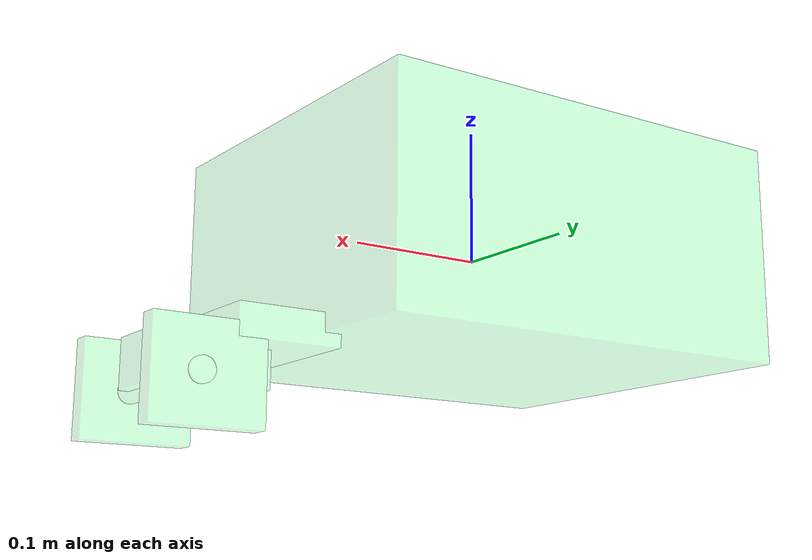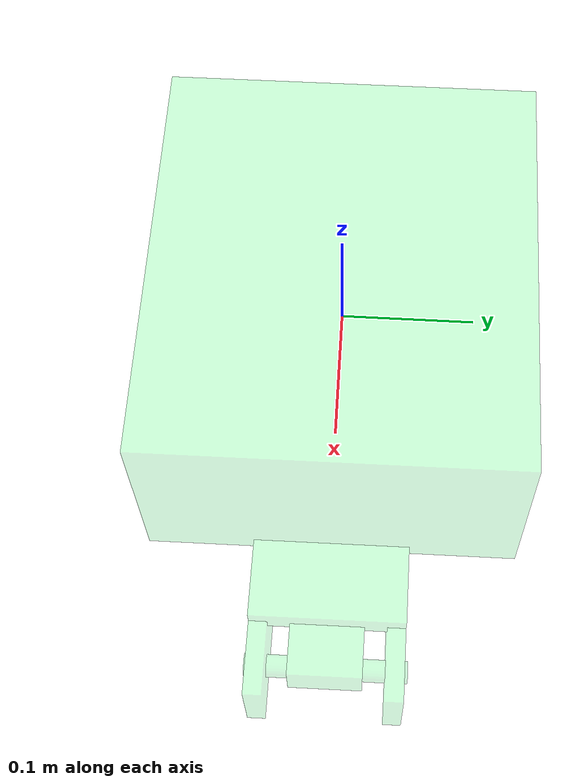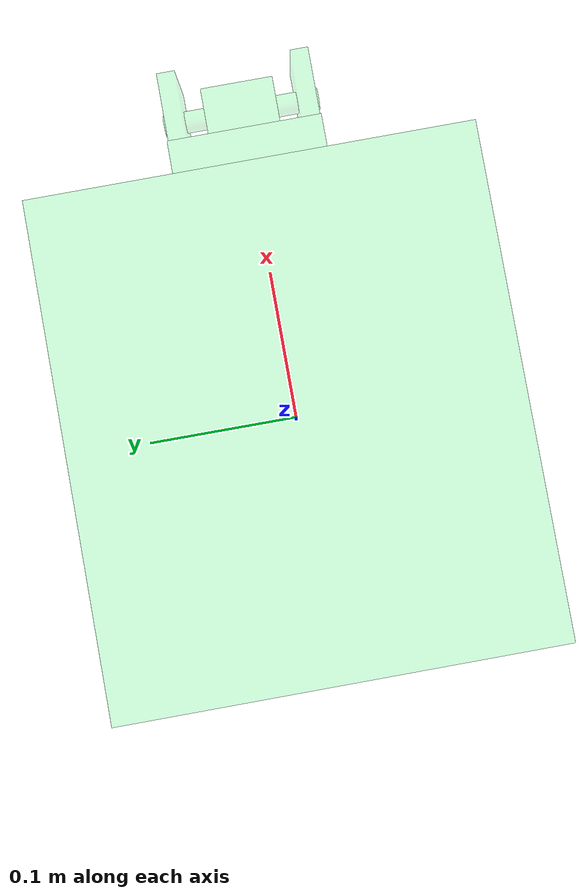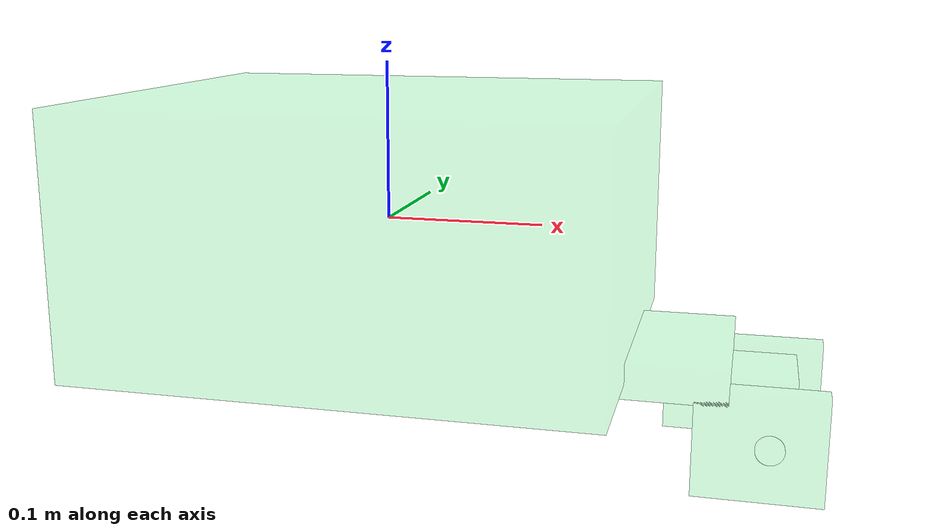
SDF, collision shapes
<?xml version="1.0"?>
<sdf version="1.9">
  <model name="gamantaray_rov_hydro">
    <static>false</static>
    <self_collide>false</self_collide>
    <allow_auto_disable>false</allow_auto_disable>

    <link name="base_link">
      <pose>0 0 0 0 0 0</pose>
      <inertial>
        <mass>13.95</mass>
        <pose>0 0 -0.045 0 0 0</pose>
        <inertia>
          <ixx>0.26</ixx>
          <ixy>0</ixy>
          <ixz>0</ixz>
          <iyy>0.32</iyy>
          <iyz>0</iyz>
          <izz>0.42</izz>
        </inertia>
      </inertial>

      <collision name="buoyancy_body_collision">
        <pose>0 0 0 0 0 0</pose>
        <geometry>
          <box>
            <size>0.32 0.28 0.16</size>
          </box>
        </geometry>
      </collision>
      <collision name="gripper_saddle_collision">
        <pose>0.184 0 -0.078 0 0 0</pose>
        <geometry><box><size>0.072 0.118 0.022</size></box></geometry>
      </collision>
      <collision name="gripper_neck_collision">
        <pose>0.220 0 -0.098 0 0 0</pose>
        <geometry><box><size>0.078 0.056 0.034</size></box></geometry>
      </collision>
      <collision name="gripper_left_cheek_collision">
        <pose>0.238 0.052 -0.112 0 0 0</pose>
        <geometry><box><size>0.076 0.014 0.066</size></box></geometry>
      </collision>
      <collision name="gripper_right_cheek_collision">
        <pose>0.238 -0.052 -0.112 0 0 0</pose>
        <geometry><box><size>0.076 0.014 0.066</size></box></geometry>
      </collision>
      <collision name="gripper_cross_pin_collision">
        <pose>0.244 0 -0.112 1.5707963268 0 0</pose>
        <geometry><cylinder><radius>0.0085</radius><length>0.124</length></cylinder></geometry>
      </collision>

      <visual name="body_collision_debug_visual">
        <pose>0 0 0 0 0 0</pose>
        <geometry><box><size>0.32 0.28 0.16</size></box></geometry>
        <material><ambient>0.00 1.00 0.25 0.12</ambient><diffuse>0.00 1.00 0.25 0.12</diffuse><specular>0.30 1.00 0.50 0.25</specular></material>
        <transparency>0.88</transparency>
      </visual>
      <visual name="gripper_saddle_collision_debug_visual">
        <pose>0.184 0 -0.078 0 0 0</pose>
        <geometry><box><size>0.072 0.118 0.022</size></box></geometry>
        <material><ambient>0.00 1.00 0.25 0.28</ambient><diffuse>0.00 1.00 0.25 0.28</diffuse><specular>0.30 1.00 0.50 0.35</specular></material>
        <transparency>0.72</transparency>
      </visual>
      <visual name="gripper_neck_collision_debug_visual">
        <pose>0.220 0 -0.098 0 0 0</pose>
        <geometry><box><size>0.078 0.056 0.034</size></box></geometry>
        <material><ambient>0.00 1.00 0.25 0.28</ambient><diffuse>0.00 1.00 0.25 0.28</diffuse><specular>0.30 1.00 0.50 0.35</specular></material>
        <transparency>0.72</transparency>
      </visual>
      <visual name="gripper_left_cheek_collision_debug_visual">
        <pose>0.238 0.052 -0.112 0 0 0</pose>
        <geometry><box><size>0.076 0.014 0.066</size></box></geometry>
        <material><ambient>0.00 1.00 0.25 0.34</ambient><diffuse>0.00 1.00 0.25 0.34</diffuse><specular>0.30 1.00 0.50 0.40</specular></material>
        <transparency>0.66</transparency>
      </visual>
      <visual name="gripper_right_cheek_collision_debug_visual">
        <pose>0.238 -0.052 -0.112 0 0 0</pose>
        <geometry><box><size>0.076 0.014 0.066</size></box></geometry>
        <material><ambient>0.00 1.00 0.25 0.34</ambient><diffuse>0.00 1.00 0.25 0.34</diffuse><specular>0.30 1.00 0.50 0.40</specular></material>
        <transparency>0.66</transparency>
      </visual>
      <visual name="gripper_cross_pin_collision_debug_visual">
        <pose>0.244 0 -0.112 1.5707963268 0 0</pose>
        <geometry><cylinder><radius>0.0085</radius><length>0.124</length></cylinder></geometry>
        <material><ambient>0.00 1.00 0.25 0.40</ambient><diffuse>0.00 1.00 0.25 0.40</diffuse><specular>0.30 1.00 0.50 0.45</specular></material>
        <transparency>0.60</transparency>
      </visual>

      <visual name="body_visual">
        <pose>0 0 0 0 0 0</pose>
        <geometry>
          <mesh>
            <uri>model://gamantaray_rov_github_blue_gripper/meshes/bluerov2.dae</uri>
            <scale>0.0192 0.0192 0.0192</scale>
          </mesh>
        </geometry>
      </visual>

      <visual name="thruster1_prop_visual">
        <pose>0.1150 -0.1050 -0.0350 0 1.5708 0.7854</pose>
        <geometry><cylinder><radius>0.026</radius><length>0.006</length></cylinder></geometry>
        <material><ambient>0.018 0.022 0.024 1</ambient><diffuse>0.025 0.032 0.036 1</diffuse></material>
      </visual>
      <visual name="thruster2_prop_visual">
        <pose>0.1150 0.1050 -0.0350 0 1.5708 -0.7854</pose>
        <geometry><cylinder><radius>0.026</radius><length>0.006</length></cylinder></geometry>
        <material><ambient>0.018 0.022 0.024 1</ambient><diffuse>0.025 0.032 0.036 1</diffuse></material>
      </visual>
      <visual name="thruster3_prop_visual">
        <pose>-0.1150 -0.1050 -0.0350 0 1.5708 2.3562</pose>
        <geometry><cylinder><radius>0.026</radius><length>0.006</length></cylinder></geometry>
        <material><ambient>0.018 0.022 0.024 1</ambient><diffuse>0.025 0.032 0.036 1</diffuse></material>
      </visual>
      <visual name="thruster4_prop_visual">
        <pose>-0.1150 0.1050 -0.0350 0 1.5708 -2.3562</pose>
        <geometry><cylinder><radius>0.026</radius><length>0.006</length></cylinder></geometry>
        <material><ambient>0.018 0.022 0.024 1</ambient><diffuse>0.025 0.032 0.036 1</diffuse></material>
      </visual>
      <visual name="thruster5_prop_visual">
        <pose>0.0200 -0.0950 0.0050 0 0 0</pose>
        <geometry><cylinder><radius>0.026</radius><length>0.006</length></cylinder></geometry>
        <material><ambient>0.018 0.022 0.024 1</ambient><diffuse>0.025 0.032 0.036 1</diffuse></material>
      </visual>
      <visual name="thruster6_prop_visual">
        <pose>0.0200 0.0950 0.0050 0 0 0</pose>
        <geometry><cylinder><radius>0.026</radius><length>0.006</length></cylinder></geometry>
        <material><ambient>0.018 0.022 0.024 1</ambient><diffuse>0.025 0.032 0.036 1</diffuse></material>
      </visual>

      <visual name="gripper_body_saddle">
        <pose>0.184 0 -0.078 0 0 0</pose>
        <geometry><box><size>0.072 0.118 0.022</size></box></geometry>
        <material><ambient>0.010 0.012 0.014 1</ambient><diffuse>0.020 0.024 0.028 1</diffuse><specular>0.20 0.22 0.24 1</specular></material>
      </visual>
      <visual name="gripper_center_neck">
        <pose>0.220 0 -0.098 0 0 0</pose>
        <geometry><box><size>0.078 0.056 0.034</size></box></geometry>
        <material><ambient>0.014 0.016 0.018 1</ambient><diffuse>0.028 0.032 0.036 1</diffuse><specular>0.24 0.26 0.28 1</specular></material>
      </visual>
      <visual name="gripper_actuator_housing">
        <pose>0.199 0 -0.062 0 0 0</pose>
        <geometry><box><size>0.056 0.076 0.024</size></box></geometry>
        <material><ambient>0.006 0.008 0.009 1</ambient><diffuse>0.014 0.018 0.020 1</diffuse><specular>0.18 0.20 0.22 1</specular></material>
      </visual>
      <visual name="gripper_left_cheek_plate">
        <pose>0.238 0.052 -0.112 0 0 0</pose>
        <geometry><box><size>0.076 0.014 0.066</size></box></geometry>
        <material><ambient>0.010 0.011 0.012 1</ambient><diffuse>0.022 0.024 0.026 1</diffuse><specular>0.22 0.22 0.20 1</specular></material>
      </visual>
      <visual name="gripper_right_cheek_plate">
        <pose>0.238 -0.052 -0.112 0 0 0</pose>
        <geometry><box><size>0.076 0.014 0.066</size></box></geometry>
        <material><ambient>0.010 0.011 0.012 1</ambient><diffuse>0.022 0.024 0.026 1</diffuse><specular>0.22 0.22 0.20 1</specular></material>
      </visual>
      <visual name="gripper_left_lower_brace">
        <pose>0.198 0.041 -0.098 0 0.36 0</pose>
        <geometry><box><size>0.090 0.010 0.012</size></box></geometry>
        <material><ambient>0.012 0.014 0.015 1</ambient><diffuse>0.024 0.026 0.028 1</diffuse></material>
      </visual>
      <visual name="gripper_right_lower_brace">
        <pose>0.198 -0.041 -0.098 0 0.36 0</pose>
        <geometry><box><size>0.090 0.010 0.012</size></box></geometry>
        <material><ambient>0.012 0.014 0.015 1</ambient><diffuse>0.024 0.026 0.028 1</diffuse></material>
      </visual>
      <visual name="gripper_cross_pin">
        <pose>0.244 0 -0.112 1.5707963268 0 0</pose>
        <geometry><cylinder><radius>0.0085</radius><length>0.124</length></cylinder></geometry>
        <material><ambient>0.12 0.13 0.13 1</ambient><diffuse>0.20 0.21 0.20 1</diffuse><specular>0.48 0.48 0.44 1</specular></material>
      </visual>
      <visual name="gripper_left_pivot_cap">
        <pose>0.244 0.064 -0.112 1.5707963268 0 0</pose>
        <geometry><cylinder><radius>0.014</radius><length>0.010</length></cylinder></geometry>
        <material><ambient>0.08 0.09 0.09 1</ambient><diffuse>0.15 0.16 0.16 1</diffuse><specular>0.42 0.42 0.38 1</specular></material>
      </visual>
      <visual name="gripper_right_pivot_cap">
        <pose>0.244 -0.064 -0.112 1.5707963268 0 0</pose>
        <geometry><cylinder><radius>0.014</radius><length>0.010</length></cylinder></geometry>
        <material><ambient>0.08 0.09 0.09 1</ambient><diffuse>0.15 0.16 0.16 1</diffuse><specular>0.42 0.42 0.38 1</specular></material>
      </visual>
      <visual name="wall_camera_housing">
        <pose>0.20 0 -0.01 0 1.5708 0</pose>
        <geometry><cylinder><radius>0.018</radius><length>0.028</length></cylinder></geometry>
        <material><ambient>0.03 0.03 0.03 1</ambient><diffuse>0.05 0.05 0.05 1</diffuse></material>
      </visual>
      <visual name="bottom_camera_housing">
        <pose>0.03 0 -0.105 0 0 0</pose>
        <geometry><cylinder><radius>0.016</radius><length>0.018</length></cylinder></geometry>
        <material><ambient>0.03 0.03 0.03 1</ambient><diffuse>0.05 0.05 0.05 1</diffuse></material>
      </visual>

      <sensor name="imu" type="imu">
        <always_on>true</always_on>
        <update_rate>100</update_rate>
        <topic>/rov/imu</topic>
      </sensor>
      <sensor name="wall_camera" type="camera">
        <pose>0.19 0 -0.01 0 0 0</pose>
        <always_on>true</always_on>
        <update_rate>12</update_rate>
        <visualize>false</visualize>
        <topic>/rov/camera/wall/image</topic>
        <camera>
          <horizontal_fov>1.20</horizontal_fov>
          <image><width>640</width><height>480</height><format>R8G8B8</format></image>
          <clip><near>0.02</near><far>12.0</far></clip>
        </camera>
      </sensor>
      <sensor name="bottom_camera" type="camera">
        <pose>0.03 0 -0.11 0 1.5708 0</pose>
        <always_on>true</always_on>
        <update_rate>12</update_rate>
        <visualize>false</visualize>
        <topic>/rov/camera/bottom/image</topic>
        <camera>
          <horizontal_fov>1.35</horizontal_fov>
          <image><width>640</width><height>480</height><format>R8G8B8</format></image>
          <clip><near>0.02</near><far>6.0</far></clip>
        </camera>
      </sensor>
    </link>

    <plugin filename="gz-sim-hydrodynamics-system" name="gz::sim::systems::Hydrodynamics">
      <link_name>base_link</link_name>
      <disable_coriolis>true</disable_coriolis>
      <xDotU>-0.8</xDotU>
      <yDotV>-1.5</yDotV>
      <zDotW>-1.8</zDotW>
      <kDotP>-0.02</kDotP>
      <mDotQ>-0.02</mDotQ>
      <nDotR>-0.02</nDotR>
      <xU>-10.0</xU>
      <yV>-10.0</yV>
      <zW>-12.0</zW>
      <kP>-1.0</kP>
      <mQ>-1.0</mQ>
      <nR>-1.0</nR>
      <xUabsU>-20.0</xUabsU>
      <yVabsV>-35.0</yVabsV>
      <zWabsW>-35.0</zWabsW>
      <kPabsP>-0.3</kPabsP>
      <mQabsQ>-0.3</mQabsQ>
      <nRabsR>-0.3</nRabsR>
    </plugin>

    <plugin filename="gz-sim-odometry-publisher-system" name="gz::sim::systems::OdometryPublisher">
      <odom_frame>world</odom_frame>
      <dimensions>3</dimensions>
      <robot_base_frame>gamantaray_rov/base_link</robot_base_frame>
      <odom_publish_frequency>30</odom_publish_frequency>
    </plugin>
  </model>
</sdf>
